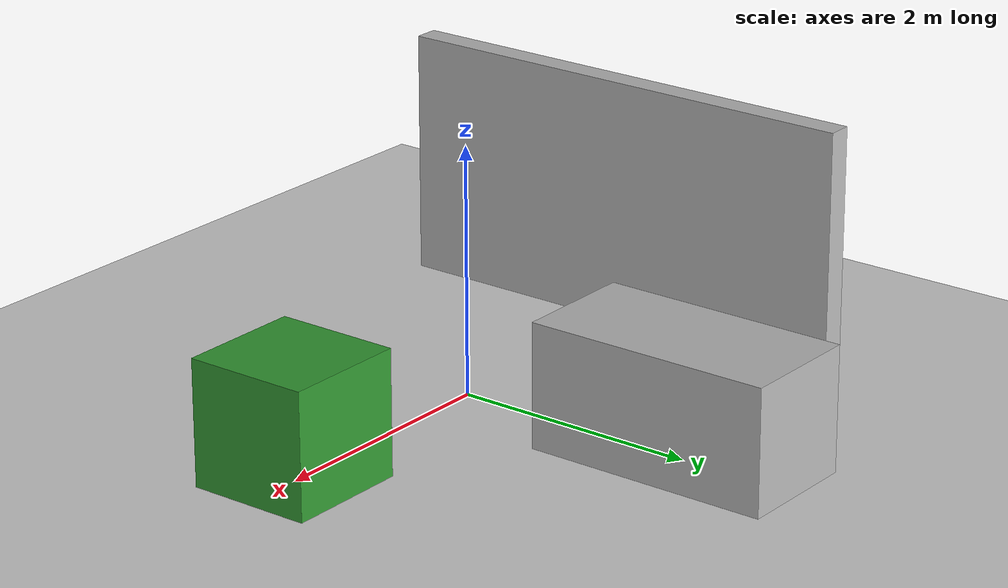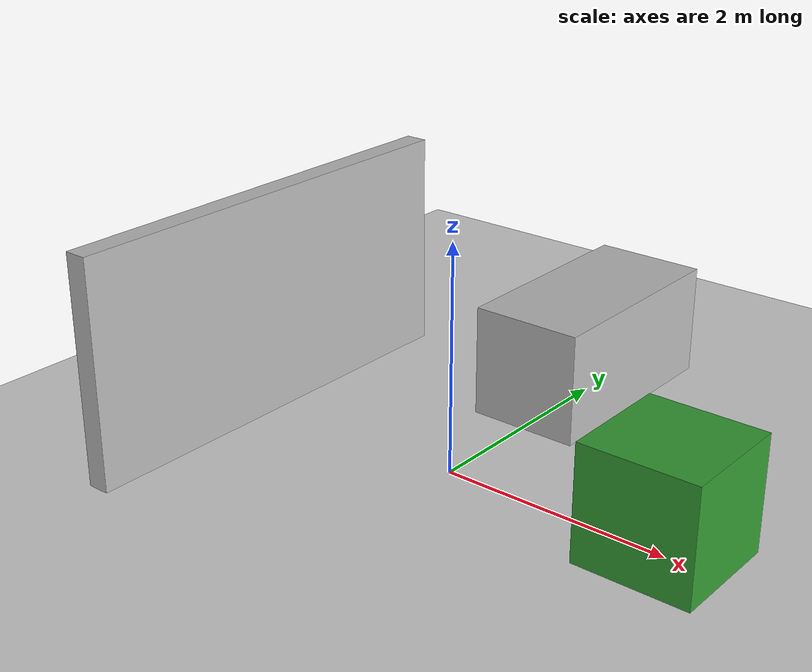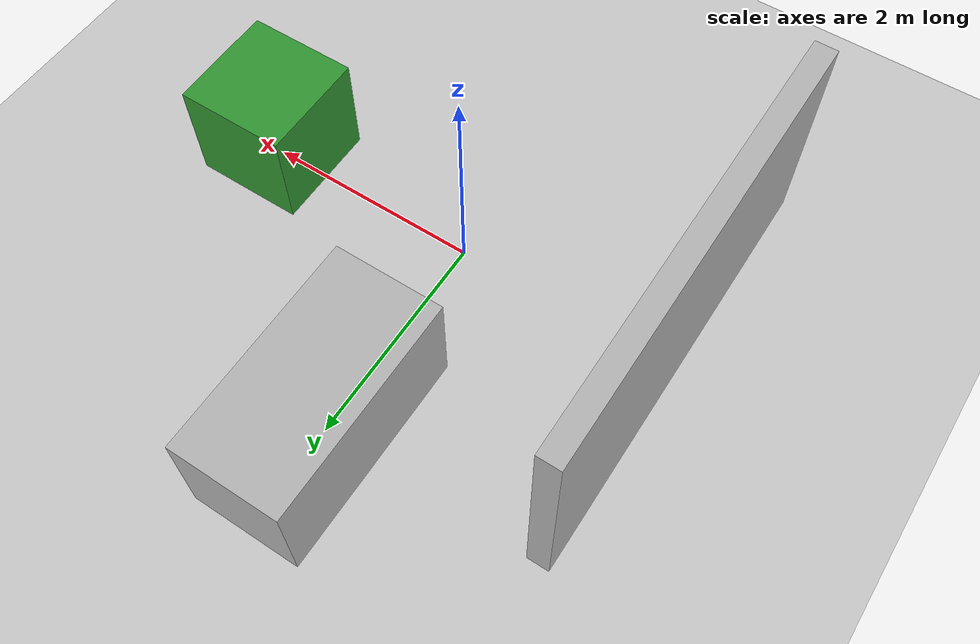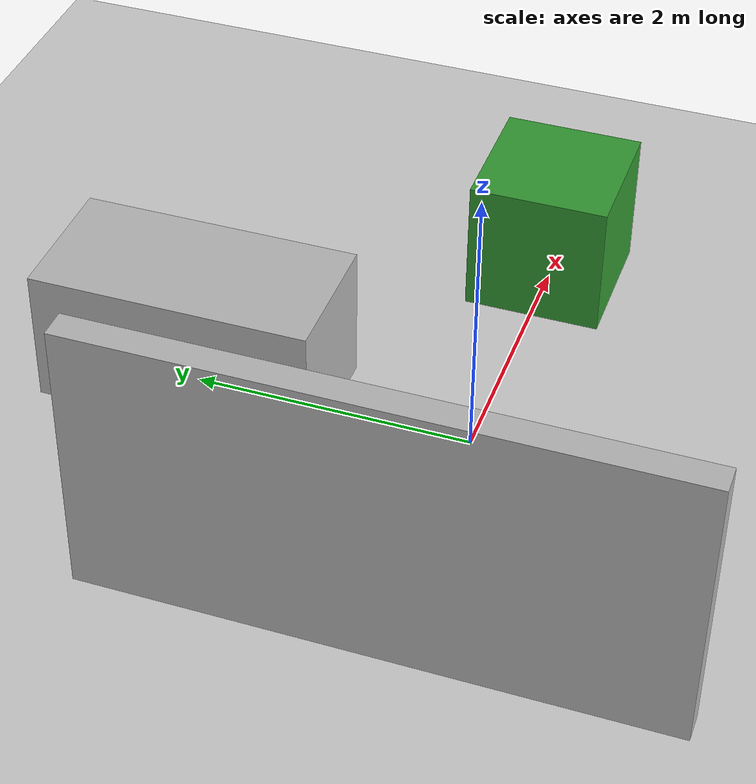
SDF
<?xml version="1.0" ?>
<sdf version="1.6">
  <world name="obstacles_world">
    <include><uri>model://ground_plane</uri></include>
    <include><uri>model://sun</uri></include>

    <!-- صندوق 1 -->
    <model name="box1">
      <pose>2 0 0.5 0 0 0</pose>
      <link name="link">
        <collision name="col">
          <geometry><box><size>1 1 1</size></box></geometry>
        </collision>
        <visual name="vis">
          <geometry><box><size>1 1 1</size></box></geometry>
          <material><ambient>0.2 0.6 0.2 1</ambient></material>
        </visual>
      </link>
      <static>true</static>
    </model>

    <!-- صندوق 2 -->
    <model name="box2">
      <pose>0 2 0.5 0 0 0</pose>
      <link name="link">
        <collision name="col"><geometry><box><size>1 2 1</size></box></geometry></collision>
        <visual name="vis"><geometry><box><size>1 2 1</size></box></geometry></visual>
      </link>
      <static>true</static>
    </model>

    <!-- جدار بسيط -->
    <model name="wall">
      <pose>-2 0 1 0 0 0</pose>
      <link name="link">
        <collision name="col"><geometry><box><size>0.2 4 2</size></box></geometry></collision>
        <visual name="vis"><geometry><box><size>0.2 4 2</size></box></geometry></visual>
      </link>
      <static>true</static>
    </model>
  </world>
</sdf>
